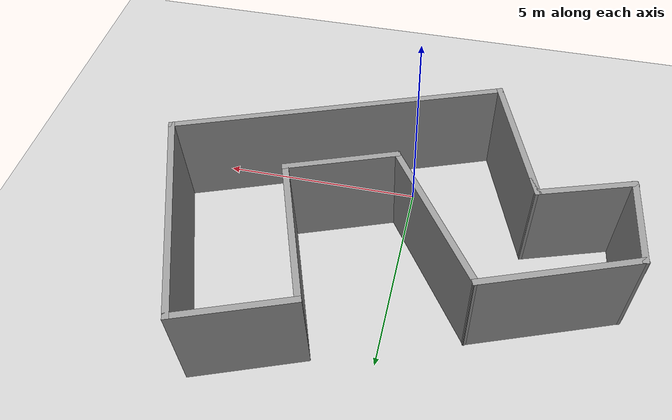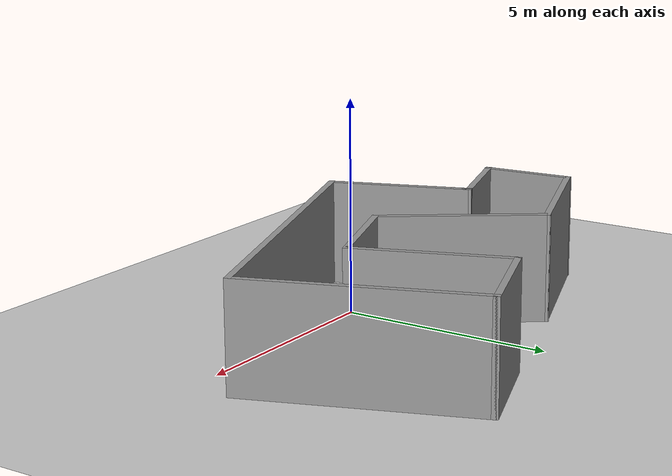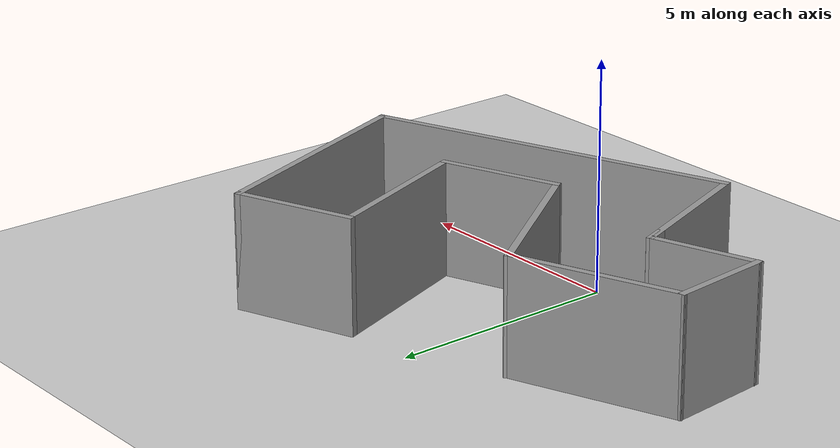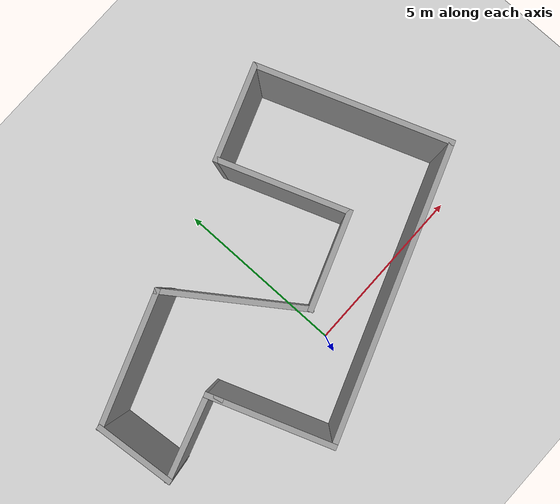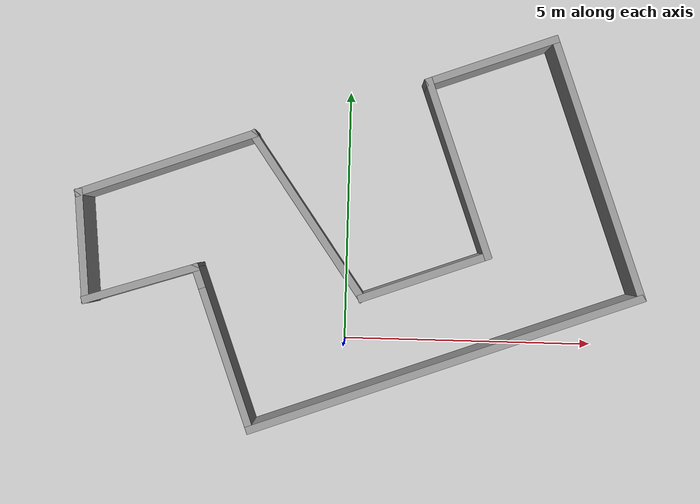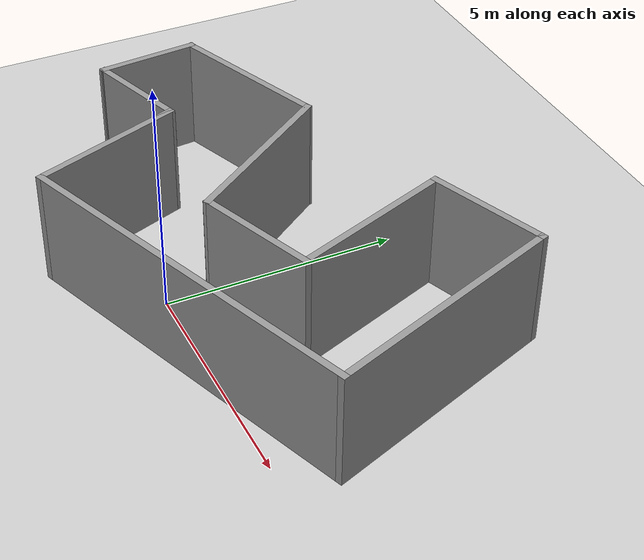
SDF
<sdf version="1.6">
 <world name="default">
  <light name="sun" type="directional">
   <pose>0 0 10 0 -0 0</pose>
   <diffuse>0.8 0.8 0.8 1</diffuse>
   <specular>0.2 0.2 0.2 1</specular>
   <attenuation>
    <range>1000</range>
    <constant>0.9</constant>
    <linear>0.01</linear>
    <quadratic>0.001</quadratic>
   </attenuation>
   <direction>-0.5 0.1 -0.9</direction>
  </light>
  <model name="ground_plane">
   <static>1</static>
   <link name="link">
    <collision name="collision">
     <geometry><plane><normal>0 0 1</normal><size>100 100</size></plane></geometry>
     <surface>
      <contact><collide_bitmask>65535</collide_bitmask></contact>
      <friction><ode><mu>100</mu><mu2>50</mu2></ode></friction>
     </surface>
    </collision>
    <visual name="visual">
     <cast_shadows>0</cast_shadows>
     <geometry><plane><normal>0 0 1</normal><size>100 100</size></plane></geometry>
     <material>
      <script><uri>file://media/materials/scripts/gazebo.material</uri><name>Gazebo/Grey</name></script>
     </material>
    </visual>
   </link>
  </model>
  <gravity>0 0 -9.8</gravity>
  <magnetic_field>6e-06 2.3e-05 -4.2e-05</magnetic_field>
  <atmosphere type="adiabatic"/>
  <physics name="default_physics" default="0" type="ode">
   <max_step_size>0.001</max_step_size>
   <real_time_factor>1</real_time_factor>
   <real_time_update_rate>1000</real_time_update_rate>
  </physics>
  <scene><ambient>0.4 0.4 0.4 1</ambient><background>0.7 0.7 0.7 1</background><shadows>1</shadows></scene>
  <spherical_coordinates>
   <surface_model>EARTH_WGS84</surface_model>
   <latitude_deg>0</latitude_deg>
   <longitude_deg>0</longitude_deg>
   <elevation>0</elevation>
   <heading_deg>0</heading_deg>
  </spherical_coordinates>
  <model name="room">
   <pose>0 1.8 0 0 -0 0.35</pose>
   <link name="Wall_0">
    <collision name="Wall_0_Collision">
     <geometry><box><size>0.5 0.15 2.5</size></box></geometry>
     <pose>0 0 1.25 0 -0 0</pose>
    </collision>
    <visual name="Wall_0_Visual">
     <pose>0 0 1.25 0 -0 0</pose>
     <geometry><box><size>0.5 0.15 2.5</size></box></geometry>
     <material>
      <script><uri>file://media/materials/scripts/gazebo.material</uri><name>Gazebo/Grey</name></script>
      <ambient>1 1 1 1</ambient>
     </material>
     <meta><layer>0</layer></meta>
    </visual>
    <pose>-2.92159 0.432165 0 0 -0 1.5708</pose>
   </link>
   <link name="Wall_1">
    <collision name="Wall_1_Collision">
     <geometry><box><size>3.5 0.15 2.5</size></box></geometry>
     <pose>0 0 1.25 0 -0 0</pose>
    </collision>
    <visual name="Wall_1_Visual">
     <pose>0 0 1.25 0 -0 0</pose>
     <geometry><box><size>3.5 0.15 2.5</size></box></geometry>
     <material>
      <script><uri>file://media/materials/scripts/gazebo.material</uri><name>Gazebo/Grey</name></script>
      <ambient>1 1 1 1</ambient>
     </material>
     <meta><layer>0</layer></meta>
    </visual>
    <pose>-2.92159 -1.06784 0 0 0 -1.5708</pose>
   </link>
   <link name="Wall_10">
    <collision name="Wall_10_Collision">
     <geometry><box><size>2.3918 0.15 2.5</size></box></geometry>
     <pose>0 0 1.25 0 -0 0</pose>
    </collision>
    <visual name="Wall_10_Visual">
     <pose>0 0 1.25 0 -0 0</pose>
     <geometry><box><size>2.3918 0.15 2.5</size></box></geometry>
     <material>
      <script><uri>file://media/materials/scripts/gazebo.material</uri><name>Gazebo/Grey</name></script>
      <ambient>1 1 1 1</ambient>
     </material>
     <meta><layer>0</layer></meta>
    </visual>
    <pose>-4.04157 0.65235 0 0 0 -0.040322</pose>
   </link>
   <link name="Wall_2">
    <collision name="Wall_2_Collision">
     <geometry><box><size>8.25 0.15 2.5</size></box></geometry>
     <pose>0 0 1.25 0 -0 0</pose>
    </collision>
    <visual name="Wall_2_Visual">
     <pose>0 0 1.25 0 -0 0</pose>
     <geometry><box><size>8.25 0.15 2.5</size></box></geometry>
     <material>
      <script><uri>file://media/materials/scripts/gazebo.material</uri><name>Gazebo/Grey</name></script>
      <ambient>1 1 1 1</ambient>
     </material>
     <meta><layer>0</layer></meta>
    </visual>
    <pose>1.12841 -2.74283 0 0 -0 0</pose>
   </link>
   <link name="Wall_3">
    <collision name="Wall_3_Collision">
     <geometry><box><size>5.5 0.15 2.5</size></box></geometry>
     <pose>0 0 1.25 0 -0 0</pose>
    </collision>
    <visual name="Wall_3_Visual">
     <pose>0 0 1.25 0 -0 0</pose>
     <geometry><box><size>5.5 0.15 2.5</size></box></geometry>
     <material>
      <script><uri>file://media/materials/scripts/gazebo.material</uri><name>Gazebo/Grey</name></script>
      <ambient>1 1 1 1</ambient>
     </material>
     <meta><layer>0</layer></meta>
    </visual>
    <pose>5.17842 -0.067835 0 0 -0 1.5708</pose>
   </link>
   <link name="Wall_4">
    <collision name="Wall_4_Collision">
     <geometry><box><size>2.75 0.15 2.5</size></box></geometry>
     <pose>0 0 1.25 0 -0 0</pose>
    </collision>
    <visual name="Wall_4_Visual">
     <pose>0 0 1.25 0 -0 0</pose>
     <geometry><box><size>2.75 0.15 2.5</size></box></geometry>
     <material>
      <script><uri>file://media/materials/scripts/gazebo.material</uri><name>Gazebo/Grey</name></script>
      <ambient>1 1 1 1</ambient>
     </material>
     <meta><layer>0</layer></meta>
    </visual>
    <pose>3.87841 2.60717 0 0 -0 3.14159</pose>
   </link>
   <link name="Wall_5">
    <collision name="Wall_5_Collision">
     <geometry><box><size>3.75 0.15 2.5</size></box></geometry>
     <pose>0 0 1.25 0 -0 0</pose>
    </collision>
    <visual name="Wall_5_Visual">
     <pose>0 0 1.25 0 -0 0</pose>
     <geometry><box><size>3.75 0.15 2.5</size></box></geometry>
     <material>
      <script><uri>file://media/materials/scripts/gazebo.material</uri><name>Gazebo/Grey</name></script>
      <ambient>1 1 1 1</ambient>
     </material>
     <meta><layer>0</layer></meta>
    </visual>
    <pose>2.57842 0.807165 0 0 0 -1.5708</pose>
   </link>
   <link name="Wall_6">
    <collision name="Wall_6_Collision">
     <geometry><box><size>2.75 0.15 2.5</size></box></geometry>
     <pose>0 0 1.25 0 -0 0</pose>
    </collision>
    <visual name="Wall_6_Visual">
     <pose>0 0 1.25 0 -0 0</pose>
     <geometry><box><size>2.75 0.15 2.5</size></box></geometry>
     <material>
      <script><uri>file://media/materials/scripts/gazebo.material</uri><name>Gazebo/Grey</name></script>
      <ambient>1 1 1 1</ambient>
     </material>
     <meta><layer>0</layer></meta>
    </visual>
    <pose>1.27842 -0.992835 0 0 -0 3.14159</pose>
   </link>
   <link name="Wall_7">
    <collision name="Wall_7_Collision">
     <geometry><box><size>4 0.15 2.5</size></box></geometry>
     <pose>0 0 1.25 0 -0 0</pose>
    </collision>
    <visual name="Wall_7_Visual">
     <pose>0 0 1.25 0 -0 0</pose>
     <geometry><box><size>4 0.15 2.5</size></box></geometry>
     <material>
      <script><uri>file://media/materials/scripts/gazebo.material</uri><name>Gazebo/Grey</name></script>
      <ambient>1 1 1 1</ambient>
     </material>
     <meta><layer>0</layer></meta>
    </visual>
    <pose>-0.519812 0.866572 0 0 -0 1.8326</pose>
   </link>
   <link name="Wall_8">
    <collision name="Wall_8_Collision">
     <geometry><box><size>3.75 0.15 2.5</size></box></geometry>
     <pose>0 0 1.25 0 -0 0</pose>
    </collision>
    <visual name="Wall_8_Visual">
     <pose>0 0 1.25 0 -0 0</pose>
     <geometry><box><size>3.75 0.15 2.5</size></box></geometry>
     <material>
      <script><uri>file://media/materials/scripts/gazebo.material</uri><name>Gazebo/Grey</name></script>
      <ambient>1 1 1 1</ambient>
     </material>
     <meta><layer>0</layer></meta>
    </visual>
    <pose>-2.81804 2.72598 0 0 -0 3.14159</pose>
   </link>
   <link name="Wall_9">
    <collision name="Wall_9_Collision">
     <geometry><box><size>2.25 0.15 2.5</size></box></geometry>
     <pose>0 0 1.25 0 -0 0</pose>
    </collision>
    <visual name="Wall_9_Visual">
     <pose>0 0 1.25 0 -0 0</pose>
     <geometry><box><size>2.25 0.15 2.5</size></box></geometry>
     <material>
      <script><uri>file://media/materials/scripts/gazebo.material</uri><name>Gazebo/Grey</name></script>
      <ambient>1 1 1 1</ambient>
     </material>
     <meta><layer>0</layer></meta>
    </visual>
    <pose>-4.8898 1.71176 0 0 0 -1.8326</pose>
   </link>
   <static>1</static>
  </model>
 </world>
</sdf>
